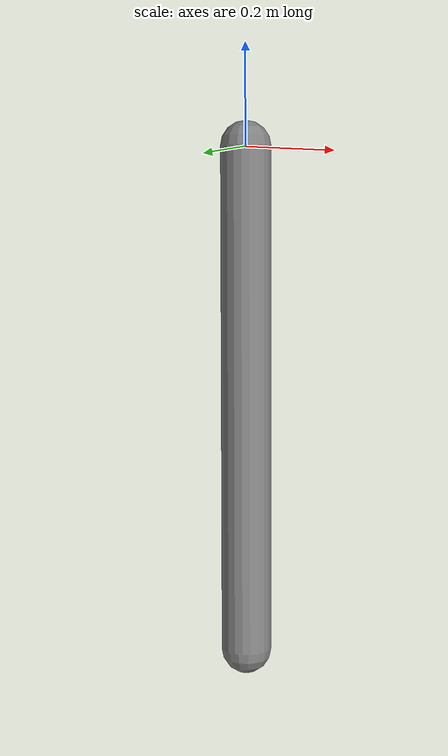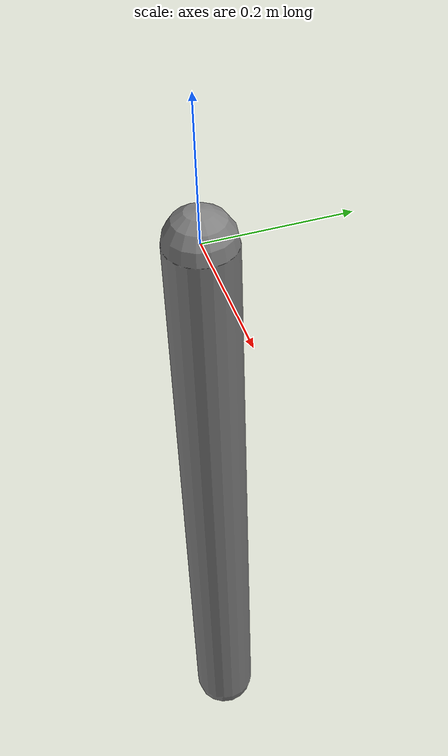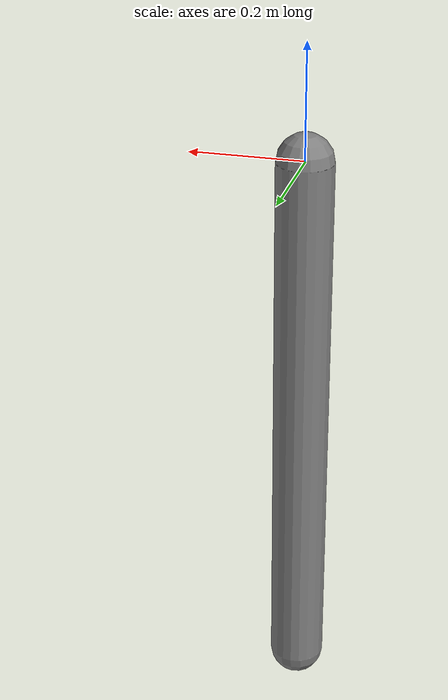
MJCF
<mujoco model="pendulum_torque">
    <compiler angle="radian"/>
    <option gravity="0 0 -9.81" timestep="0.001"/>

    <worldbody>
        <!-- Soporte fijo -->
        <body name="base" pos="0 0 0">
            <!-- Péndulo -->
            <body name="pendulum" pos="0 0 0">
                <joint
                    name="hinge"
                    type="hinge"
                    axis="0 1 0"
                    limited="false"
                />
                <geom
                    type="capsule"
                    fromto="0 0 0 0 0 -1"
                    size="0.05"
                    mass="1.0"
                />
            </body>
        </body>
    </worldbody>

    <actuator>
        <!-- Torque directo -->
        <motor
            name="torque_motor"
            joint="hinge"
            gear="1"
            ctrlrange="-10 10"
        />
    </actuator>
</mujoco>
